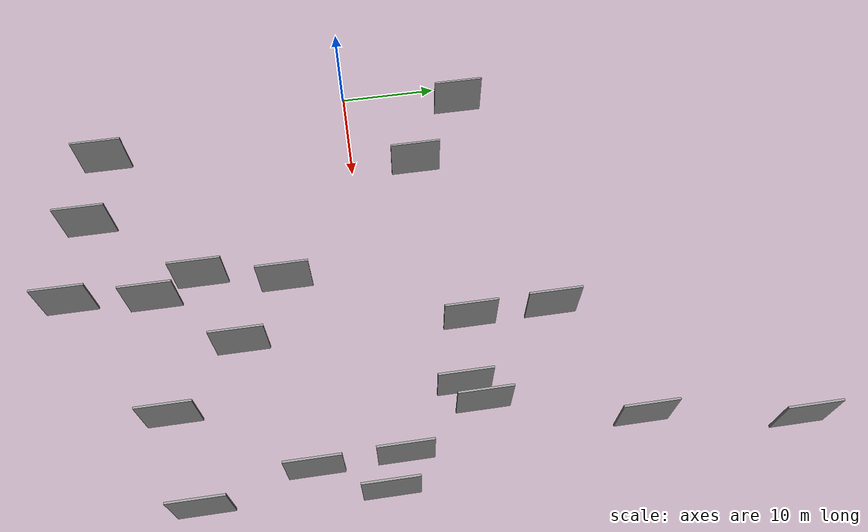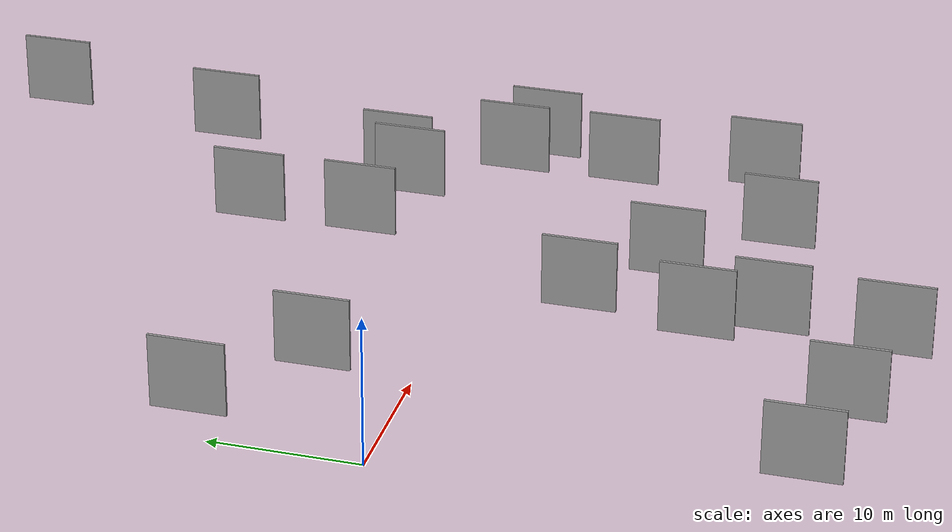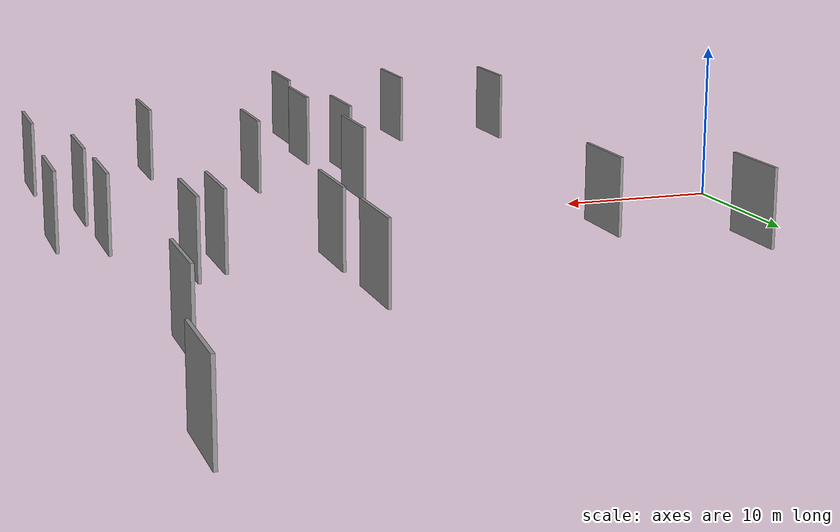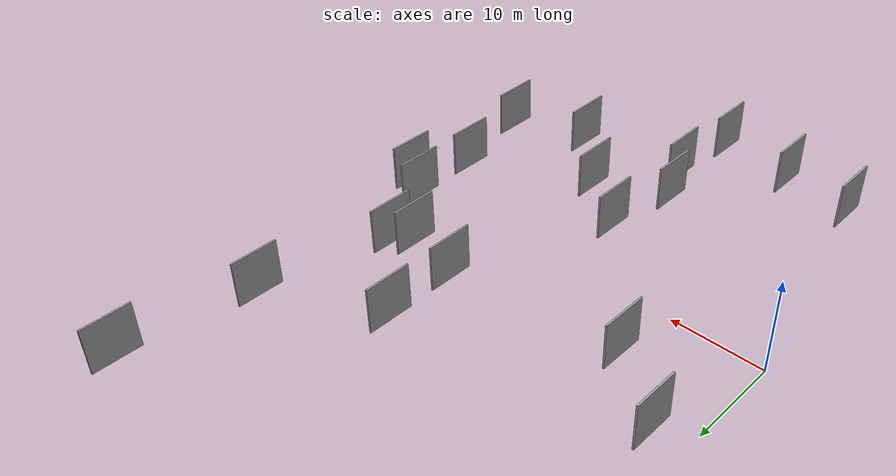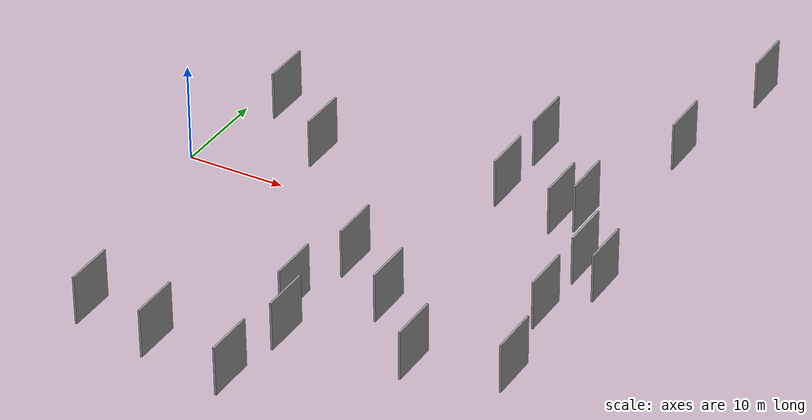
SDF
<sdf version="1.6">
 <world name="default">
  <scene>
   <sky><clouds><speed>12</speed></clouds></sky>
   <ambient>0.4 0.4 0.4 1</ambient>
   <background>0.7 0.7 0.7 1</background>
   <shadows>1</shadows>
  </scene>
  <gravity>0 0 -9.8066</gravity>
  <magnetic_field>6e-06 2.3e-05 -4.2e-05</magnetic_field>
  <physics default="0" name="default_physics" type="ode">
   <ode>
    <solver>
     <type>quick</type>
     <iters>10</iters>
     <sor>1.0</sor>
     <use_dynamic_moi_rescaling>0</use_dynamic_moi_rescaling>
    </solver>
    <constraints>
     <cfm>0</cfm>
     <erp>0.2</erp>
     <contact_max_correcting_vel>100</contact_max_correcting_vel>
     <contact_surface_layer>0.001</contact_surface_layer>
    </constraints>
   </ode>
   <max_step_size>0.004</max_step_size>
   <real_time_factor>1</real_time_factor>
   <real_time_update_rate>250</real_time_update_rate>
  </physics>
  <light name="sun" type="directional">
   <pose>0 0 10 0 0 0</pose>
   <diffuse>0.8 0.8 0.8 1</diffuse>
   <specular>0.2 0.2 0.2 1</specular>
   <attenuation>
    <range>1000</range>
    <constant>0.9</constant>
    <linear>0.01</linear>
    <quadratic>0.001</quadratic>
   </attenuation>
   <direction>-0.5 0.1 -0.9</direction>
  </light>
  <model name="grey_wall_1">
   <static>1</static>
   <pose>28.6454 -12.1876 0.0 0.000000 0.000000 1.570796</pose>
   <link name="link">
    <pose>0 0 2.50 0 0 0</pose>
    <collision name="collision"><geometry><box><size>5.00 0.2 5.00</size></box></geometry></collision>
    <visual name="visual">
     <cast_shadows>0</cast_shadows>
     <geometry><box><size>5.00 0.2 5.00</size></box></geometry>
     <material>
      <script>
       <uri>model://grey_wall/materials/scripts</uri>
       <uri>model://grey_wall/materials/textures</uri>
       <name>vrc/grey_wall</name>
      </script>
     </material>
    </visual>
   </link>
  </model>
  <model name="grey_wall_2">
   <static>1</static>
   <pose>22.1348 -28.3118 0.0 0.000000 0.000000 1.570796</pose>
   <link name="link">
    <pose>0 0 2.50 0 0 0</pose>
    <collision name="collision"><geometry><box><size>5.00 0.2 5.00</size></box></geometry></collision>
    <visual name="visual">
     <cast_shadows>0</cast_shadows>
     <geometry><box><size>5.00 0.2 5.00</size></box></geometry>
     <material>
      <script>
       <uri>model://grey_wall/materials/scripts</uri>
       <uri>model://grey_wall/materials/textures</uri>
       <name>vrc/grey_wall</name>
      </script>
     </material>
    </visual>
   </link>
  </model>
  <model name="grey_wall_3">
   <static>1</static>
   <pose>10.5982 6.6313 0.0 0.000000 0.000000 1.570796</pose>
   <link name="link">
    <pose>0 0 2.50 0 0 0</pose>
    <collision name="collision"><geometry><box><size>5.00 0.2 5.00</size></box></geometry></collision>
    <visual name="visual">
     <cast_shadows>0</cast_shadows>
     <geometry><box><size>5.00 0.2 5.00</size></box></geometry>
     <material>
      <script>
       <uri>model://grey_wall/materials/scripts</uri>
       <uri>model://grey_wall/materials/textures</uri>
       <name>vrc/grey_wall</name>
      </script>
     </material>
    </visual>
   </link>
  </model>
  <model name="grey_wall_4">
   <static>1</static>
   <pose>21.0218 -15.7908 0.0 0.000000 0.000000 1.570796</pose>
   <link name="link">
    <pose>0 0 2.50 0 0 0</pose>
    <collision name="collision"><geometry><box><size>5.00 0.2 5.00</size></box></geometry></collision>
    <visual name="visual">
     <cast_shadows>0</cast_shadows>
     <geometry><box><size>5.00 0.2 5.00</size></box></geometry>
     <material>
      <script>
       <uri>model://grey_wall/materials/scripts</uri>
       <uri>model://grey_wall/materials/textures</uri>
       <name>vrc/grey_wall</name>
      </script>
     </material>
    </visual>
   </link>
  </model>
  <model name="grey_wall_5">
   <static>1</static>
   <pose>22.5638 -7.6888 0.0 0.000000 0.000000 1.570796</pose>
   <link name="link">
    <pose>0 0 2.50 0 0 0</pose>
    <collision name="collision"><geometry><box><size>5.00 0.2 5.00</size></box></geometry></collision>
    <visual name="visual">
     <cast_shadows>0</cast_shadows>
     <geometry><box><size>5.00 0.2 5.00</size></box></geometry>
     <material>
      <script>
       <uri>model://grey_wall/materials/scripts</uri>
       <uri>model://grey_wall/materials/textures</uri>
       <name>vrc/grey_wall</name>
      </script>
     </material>
    </visual>
   </link>
  </model>
  <model name="grey_wall_6">
   <static>1</static>
   <pose>41.3682 -6.3528 0.0 0.000000 0.000000 1.570796</pose>
   <link name="link">
    <pose>0 0 2.50 0 0 0</pose>
    <collision name="collision"><geometry><box><size>5.00 0.2 5.00</size></box></geometry></collision>
    <visual name="visual">
     <cast_shadows>0</cast_shadows>
     <geometry><box><size>5.00 0.2 5.00</size></box></geometry>
     <material>
      <script>
       <uri>model://grey_wall/materials/scripts</uri>
       <uri>model://grey_wall/materials/textures</uri>
       <name>vrc/grey_wall</name>
      </script>
     </material>
    </visual>
   </link>
  </model>
  <model name="grey_wall_7">
   <static>1</static>
   <pose>34.8603 -18.6025 0.0 0.000000 0.000000 1.570796</pose>
   <link name="link">
    <pose>0 0 2.50 0 0 0</pose>
    <collision name="collision"><geometry><box><size>5.00 0.2 5.00</size></box></geometry></collision>
    <visual name="visual">
     <cast_shadows>0</cast_shadows>
     <geometry><box><size>5.00 0.2 5.00</size></box></geometry>
     <material>
      <script>
       <uri>model://grey_wall/materials/scripts</uri>
       <uri>model://grey_wall/materials/textures</uri>
       <name>vrc/grey_wall</name>
      </script>
     </material>
    </visual>
   </link>
  </model>
  <model name="grey_wall_8">
   <static>1</static>
   <pose>13.5026 -26.7712 0.0 0.000000 0.000000 1.570796</pose>
   <link name="link">
    <pose>0 0 2.50 0 0 0</pose>
    <collision name="collision"><geometry><box><size>5.00 0.2 5.00</size></box></geometry></collision>
    <visual name="visual">
     <cast_shadows>0</cast_shadows>
     <geometry><box><size>5.00 0.2 5.00</size></box></geometry>
     <material>
      <script>
       <uri>model://grey_wall/materials/scripts</uri>
       <uri>model://grey_wall/materials/textures</uri>
       <name>vrc/grey_wall</name>
      </script>
     </material>
    </visual>
   </link>
  </model>
  <model name="grey_wall_9">
   <static>1</static>
   <pose>29.1081 9.2058 0.0 0.000000 0.000000 1.570796</pose>
   <link name="link">
    <pose>0 0 2.50 0 0 0</pose>
    <collision name="collision"><geometry><box><size>5.00 0.2 5.00</size></box></geometry></collision>
    <visual name="visual">
     <cast_shadows>0</cast_shadows>
     <geometry><box><size>5.00 0.2 5.00</size></box></geometry>
     <material>
      <script>
       <uri>model://grey_wall/materials/scripts</uri>
       <uri>model://grey_wall/materials/textures</uri>
       <name>vrc/grey_wall</name>
      </script>
     </material>
    </visual>
   </link>
  </model>
  <model name="grey_wall_10">
   <static>1</static>
   <pose>42.8829 36.6577 0.0 0.000000 0.000000 1.570796</pose>
   <link name="link">
    <pose>0 0 2.50 0 0 0</pose>
    <collision name="collision"><geometry><box><size>5.00 0.2 5.00</size></box></geometry></collision>
    <visual name="visual">
     <cast_shadows>0</cast_shadows>
     <geometry><box><size>5.00 0.2 5.00</size></box></geometry>
     <material>
      <script>
       <uri>model://grey_wall/materials/scripts</uri>
       <uri>model://grey_wall/materials/textures</uri>
       <name>vrc/grey_wall</name>
      </script>
     </material>
    </visual>
   </link>
  </model>
  <model name="grey_wall_11">
   <static>1</static>
   <pose>37.4778 9.0124 0.0 0.000000 0.000000 1.570796</pose>
   <link name="link">
    <pose>0 0 2.50 0 0 0</pose>
    <collision name="collision"><geometry><box><size>5.00 0.2 5.00</size></box></geometry></collision>
    <visual name="visual">
     <cast_shadows>0</cast_shadows>
     <geometry><box><size>5.00 0.2 5.00</size></box></geometry>
     <material>
      <script>
       <uri>model://grey_wall/materials/scripts</uri>
       <uri>model://grey_wall/materials/textures</uri>
       <name>vrc/grey_wall</name>
      </script>
     </material>
    </visual>
   </link>
  </model>
  <model name="grey_wall_12">
   <static>1</static>
   <pose>41.2014 1.5104 0.0 0.000000 0.000000 1.570796</pose>
   <link name="link">
    <pose>0 0 2.50 0 0 0</pose>
    <collision name="collision"><geometry><box><size>5.00 0.2 5.00</size></box></geometry></collision>
    <visual name="visual">
     <cast_shadows>0</cast_shadows>
     <geometry><box><size>5.00 0.2 5.00</size></box></geometry>
     <material>
      <script>
       <uri>model://grey_wall/materials/scripts</uri>
       <uri>model://grey_wall/materials/textures</uri>
       <name>vrc/grey_wall</name>
      </script>
     </material>
    </visual>
   </link>
  </model>
  <model name="grey_wall_13">
   <static>1</static>
   <pose>22.9232 -20.3038 0.0 0.000000 0.000000 1.570796</pose>
   <link name="link">
    <pose>0 0 2.50 0 0 0</pose>
    <collision name="collision"><geometry><box><size>5.00 0.2 5.00</size></box></geometry></collision>
    <visual name="visual">
     <cast_shadows>0</cast_shadows>
     <geometry><box><size>5.00 0.2 5.00</size></box></geometry>
     <material>
      <script>
       <uri>model://grey_wall/materials/scripts</uri>
       <uri>model://grey_wall/materials/textures</uri>
       <name>vrc/grey_wall</name>
      </script>
     </material>
    </visual>
   </link>
  </model>
  <model name="grey_wall_14">
   <static>1</static>
   <pose>35.5933 7.5890 0.0 0.000000 0.000000 1.570796</pose>
   <link name="link">
    <pose>0 0 2.50 0 0 0</pose>
    <collision name="collision"><geometry><box><size>5.00 0.2 5.00</size></box></geometry></collision>
    <visual name="visual">
     <cast_shadows>0</cast_shadows>
     <geometry><box><size>5.00 0.2 5.00</size></box></geometry>
     <material>
      <script>
       <uri>model://grey_wall/materials/scripts</uri>
       <uri>model://grey_wall/materials/textures</uri>
       <name>vrc/grey_wall</name>
      </script>
     </material>
    </visual>
   </link>
  </model>
  <model name="grey_wall_15">
   <static>1</static>
   <pose>3.2095 12.2558 0.0 0.000000 0.000000 1.570796</pose>
   <link name="link">
    <pose>0 0 2.50 0 0 0</pose>
    <collision name="collision"><geometry><box><size>5.00 0.2 5.00</size></box></geometry></collision>
    <visual name="visual">
     <cast_shadows>0</cast_shadows>
     <geometry><box><size>5.00 0.2 5.00</size></box></geometry>
     <material>
      <script>
       <uri>model://grey_wall/materials/scripts</uri>
       <uri>model://grey_wall/materials/textures</uri>
       <name>vrc/grey_wall</name>
      </script>
     </material>
    </visual>
   </link>
  </model>
  <model name="grey_wall_16">
   <static>1</static>
   <pose>44.0792 -0.1010 0.0 0.000000 0.000000 1.570796</pose>
   <link name="link">
    <pose>0 0 2.50 0 0 0</pose>
    <collision name="collision"><geometry><box><size>5.00 0.2 5.00</size></box></geometry></collision>
    <visual name="visual">
     <cast_shadows>0</cast_shadows>
     <geometry><box><size>5.00 0.2 5.00</size></box></geometry>
     <material>
      <script>
       <uri>model://grey_wall/materials/scripts</uri>
       <uri>model://grey_wall/materials/textures</uri>
       <name>vrc/grey_wall</name>
      </script>
     </material>
    </visual>
   </link>
  </model>
  <model name="grey_wall_17">
   <static>1</static>
   <pose>28.9978 17.0803 0.0 0.000000 0.000000 1.570796</pose>
   <link name="link">
    <pose>0 0 2.50 0 0 0</pose>
    <collision name="collision"><geometry><box><size>5.00 0.2 5.00</size></box></geometry></collision>
    <visual name="visual">
     <cast_shadows>0</cast_shadows>
     <geometry><box><size>5.00 0.2 5.00</size></box></geometry>
     <material>
      <script>
       <uri>model://grey_wall/materials/scripts</uri>
       <uri>model://grey_wall/materials/textures</uri>
       <name>vrc/grey_wall</name>
      </script>
     </material>
    </visual>
   </link>
  </model>
  <model name="grey_wall_18">
   <static>1</static>
   <pose>5.7080 -25.4048 0.0 0.000000 0.000000 1.570796</pose>
   <link name="link">
    <pose>0 0 2.50 0 0 0</pose>
    <collision name="collision"><geometry><box><size>5.00 0.2 5.00</size></box></geometry></collision>
    <visual name="visual">
     <cast_shadows>0</cast_shadows>
     <geometry><box><size>5.00 0.2 5.00</size></box></geometry>
     <material>
      <script>
       <uri>model://grey_wall/materials/scripts</uri>
       <uri>model://grey_wall/materials/textures</uri>
       <name>vrc/grey_wall</name>
      </script>
     </material>
    </visual>
   </link>
  </model>
  <model name="grey_wall_19">
   <static>1</static>
   <pose>40.7548 22.8511 0.0 0.000000 0.000000 1.570796</pose>
   <link name="link">
    <pose>0 0 2.50 0 0 0</pose>
    <collision name="collision"><geometry><box><size>5.00 0.2 5.00</size></box></geometry></collision>
    <visual name="visual">
     <cast_shadows>0</cast_shadows>
     <geometry><box><size>5.00 0.2 5.00</size></box></geometry>
     <material>
      <script>
       <uri>model://grey_wall/materials/scripts</uri>
       <uri>model://grey_wall/materials/textures</uri>
       <name>vrc/grey_wall</name>
      </script>
     </material>
    </visual>
   </link>
  </model>
  <model name="grey_wall_20">
   <static>1</static>
   <pose>43.3643 -15.9831 0.0 0.000000 0.000000 1.570796</pose>
   <link name="link">
    <pose>0 0 2.50 0 0 0</pose>
    <collision name="collision"><geometry><box><size>5.00 0.2 5.00</size></box></geometry></collision>
    <visual name="visual">
     <cast_shadows>0</cast_shadows>
     <geometry><box><size>5.00 0.2 5.00</size></box></geometry>
     <material>
      <script>
       <uri>model://grey_wall/materials/scripts</uri>
       <uri>model://grey_wall/materials/textures</uri>
       <name>vrc/grey_wall</name>
      </script>
     </material>
    </visual>
   </link>
  </model>
 </world>
</sdf>
